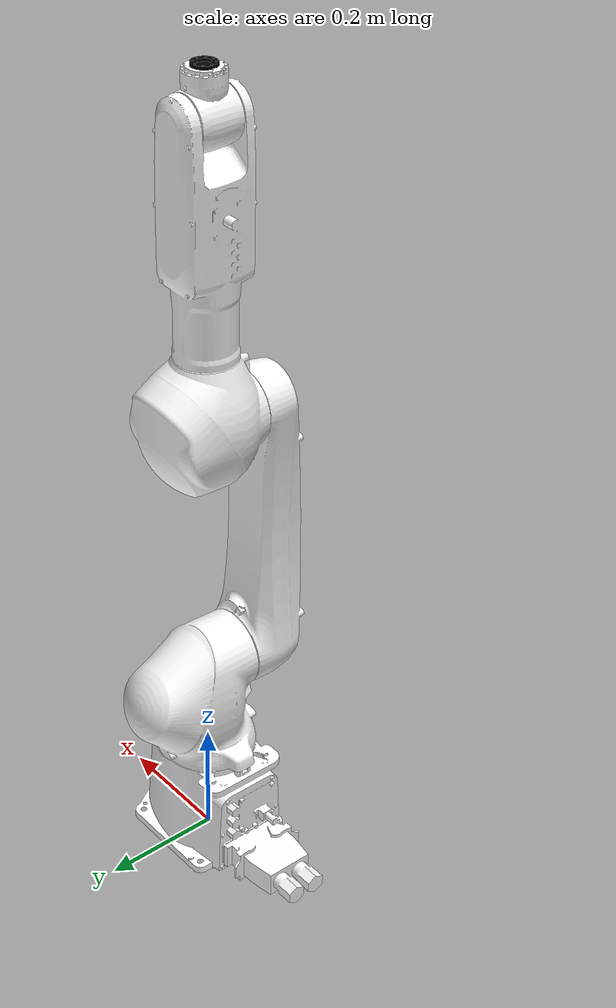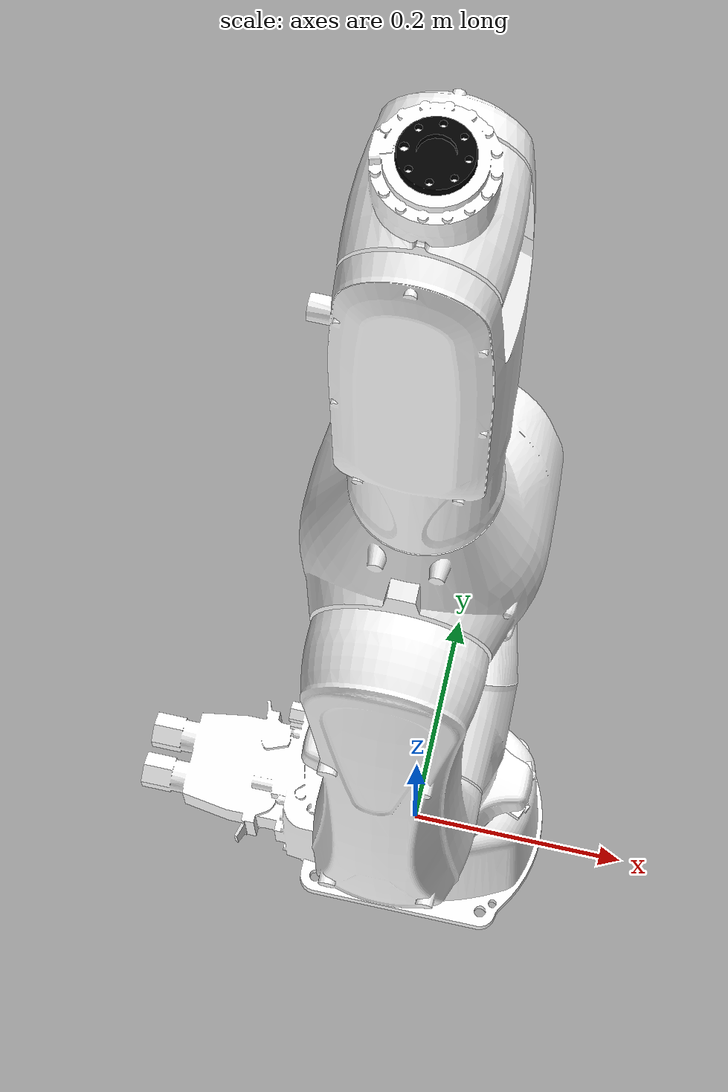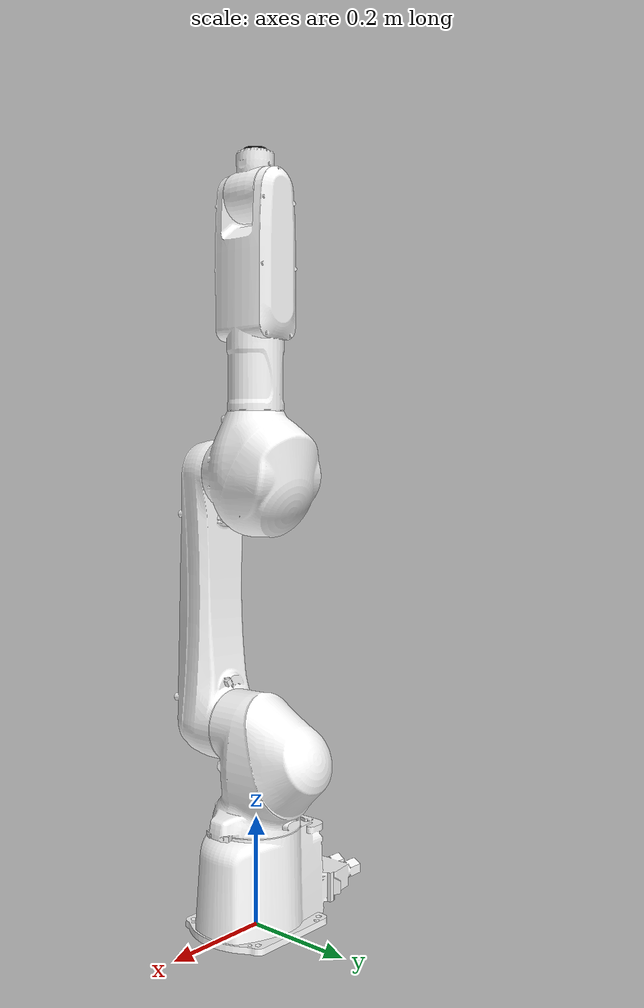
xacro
<?xml version="1.0" ?>
<robot name="khi_rs007l" xmlns:xacro="http://ros.org/wiki/xacro">
  <xacro:include filename="$(find rs_description)/urdf/rs007l_macro.xacro"/>

  <!-- instantiate rs007l -->
  <xacro:khi_rs007l />

  <!-- Fix rs007l to world -->

  <link name="world"/>

  <joint name="world2base" type="fixed">
    <parent link="world"/>
    <child link="base_link"/>
    <origin rpy="0 0 0" xyz="0 0 0"/>
  </joint>
</robot>

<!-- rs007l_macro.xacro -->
<robot xmlns:xacro="http://ros.org/wiki/xacro">
  <xacro:macro name="khi_rs007l">

    <xacro:include filename="$(find rs_description)/urdf/rs.transmission.xacro" />
    <xacro:include filename="$(find rs_description)/urdf/common.gazebo.xacro" />

    <!-- link rviz colors -->
    <material name="White">
      <color rgba="1 1 1 1"/>
    </material>

    <material name="Black">
      <color rgba="0 0 0 1"/>
    </material>

    <!-- DH parameters -->
    <xacro:property name="dh_j1_j2_roty" value="-${pi/2}"/>
    <xacro:property name="dh_j3_j4_roty" value="${pi/2}"/>
    <xacro:property name="dh_j4_j5_roty" value="-${pi/2}"/>
    <xacro:property name="dh_j5_j6_roty" value="${pi/2}"/>

    <!-- link mass [kg] -->
    <xacro:property name="j0_mass" value="11"/>
    <xacro:property name="j1_mass" value="8.188"/>
    <xacro:property name="j2_mass" value="6.826"/>
    <xacro:property name="j3_mass" value="5.236"/>
    <xacro:property name="j4_mass" value="5.066"/>
    <xacro:property name="j5_mass" value="1.625"/>
    <xacro:property name="j6_mass" value="0.625"/>

    <!-- link lengths [m] -->
    <xacro:property name="j0_length" value="0.36"/>
    <xacro:property name="j1_length" value="0.0"/>
    <xacro:property name="j2_length" value="0.455"/>
    <xacro:property name="j3_length" value="0.0925"/>
    <xacro:property name="j4_length" value="0.3825"/>
    <xacro:property name="j5_length" value="0.078"/>

    <!-- joint limits [rad] -->
    <xacro:property name="j1_lower_limit" value="${-pi}"/>
    <xacro:property name="j1_upper_limit" value="${pi}"/>
    <xacro:property name="j2_lower_limit" value="${-pi*135/180}"/>
    <xacro:property name="j2_upper_limit" value="${pi*135/180}"/>
    <xacro:property name="j3_lower_limit" value="${-pi*157/180}"/>
    <xacro:property name="j3_upper_limit" value="${pi*157/180}"/>
    <xacro:property name="j4_lower_limit" value="${-pi*200/180}"/>
    <xacro:property name="j4_upper_limit" value="${pi*200/180}"/>
    <xacro:property name="j5_lower_limit" value="${-pi*125/180}"/>
    <xacro:property name="j5_upper_limit" value="${pi*125/180}"/>
    <xacro:property name="j6_lower_limit" value="${-2*pi}"/>
    <xacro:property name="j6_upper_limit" value="${2*pi}"/>

    <!-- joint verocity limits [rad/s] -->
    <xacro:property name="j1_velocity_limit" value="${pi*370/180}"/>
    <xacro:property name="j2_velocity_limit" value="${pi*310/180}"/>
    <xacro:property name="j3_velocity_limit" value="${pi*410/180}"/>
    <xacro:property name="j4_velocity_limit" value="${pi*550/180}"/>
    <xacro:property name="j5_velocity_limit" value="${pi*550/180}"/>
    <xacro:property name="j6_velocity_limit" value="${pi*1000/180}"/>

    <!-- link inertial(TODO : set correct link inertial )-->
    <xacro:macro name="default_inertial" params="mass">
      <inertial>
        <mass value="${mass}" />
        <inertia ixx="1.0" ixy="0.0" ixz="0.0" iyy="1.0" iyz="0.0" izz="1.0" />
      </inertial>
    </xacro:macro>

    <!-- rs007l start -->

    <!-- Link 0 -->
    <link name="base_link">
      <visual>
        <geometry>
          <mesh filename="package://rs_description/meshes/RS007L_J0.stl"/>
        </geometry>
        <material name="White"/>
        <origin rpy="0 0 0" xyz="0 0 0"/>
      </visual>
      <collision>
        <geometry>
          <mesh filename="package://rs_description/meshes/RS007L_J0.stl"/>
        </geometry>
        <material name="White"/>
        <origin rpy="0 0 0" xyz="0 0 0"/>
      </collision>
      <xacro:default_inertial mass="${j0_mass}"/>
    </link>

    <!-- Link 1 -->
    <joint name="joint1" type="revolute">
      <axis xyz="0 0 -1" rpy="0 0 0" />
      <limit effort="1000.0" lower="${j1_lower_limit}" upper="${j1_upper_limit}" velocity="${j1_velocity_limit}"/>
      <origin xyz="0 0 ${j0_length}" rpy="0 0 0" />
      <parent link="base_link"/>
      <child link="link1"/>
      <dynamics damping="0.0" friction="0.0"/>
    </joint>

    <link name="link1">
      <visual>
        <geometry>
          <mesh filename="package://rs_description/meshes/RS007L_J1.stl"/>
        </geometry>
        <material name="White"/>
        <origin rpy="0 0 0" xyz="0 0 0"/>
      </visual>
      <collision>
        <geometry>
          <mesh filename="package://rs_description/meshes/RS007L_J1.stl"/>
        </geometry>
        <material name="White"/>
        <origin rpy="0 0 0" xyz="0 0 0"/>
      </collision>
      <xacro:default_inertial mass="${j1_mass}"/>
    </link>

    <!-- Link 2 -->
    <joint name="joint2" type="revolute">
      <axis xyz="0 0 1" rpy="0 0 0" />
      <limit effort="1000.0" lower="${j2_lower_limit}" upper="${j2_upper_limit}" velocity="${j2_velocity_limit}"/>
      <origin xyz="0 0 ${j1_length}" rpy="0 ${dh_j1_j2_roty} 0" />
      <parent link="link1"/>
      <child link="link2"/>
      <dynamics damping="0.0" friction="0.0"/>
    </joint>

    <link name="link2">
      <visual>
        <geometry>
          <mesh filename="package://rs_description/meshes/RS007L_J2.stl"/>
        </geometry>
        <material name="White"/>
        <origin xyz="0 0 0" rpy="0 ${dh_j1_j2_roty*-1} 0"/>
      </visual>
      <collision>
        <geometry>
          <mesh filename="package://rs_description/meshes/RS007L_J2.stl"/>
        </geometry>
        <material name="White"/>
        <origin xyz="0 0 0" rpy="0 ${dh_j1_j2_roty*-1} 0"/>
      </collision>
      <xacro:default_inertial mass="0${j2_mass}"/>
    </link>

    <!-- Link 3 -->
    <joint name="joint3" type="revolute">
      <axis xyz="0 0 -1" rpy="0 0 0" />
      <limit effort="1000.0" lower="${j3_lower_limit}" upper="${j3_upper_limit}" velocity="${j3_velocity_limit}"/>
      <origin xyz="${j2_length} 0 0" rpy="0 0 0" />
      <parent link="link2"/>
      <child link="link3"/>
      <dynamics damping="0.0" friction="0.0"/>
    </joint>

    <link name="link3">
      <visual>
        <geometry>
          <mesh filename="package://rs_description/meshes/RS007L_J3.stl"/>
        </geometry>
        <material name="White"/>
        <origin xyz="0 0 0" rpy="0 ${dh_j1_j2_roty*-1} 0"/>
      </visual>
      <collision>
        <geometry>
          <mesh filename="package://rs_description/meshes/RS007L_J3.stl"/>
        </geometry>
        <material name="White"/>
        <origin xyz="0 0 0" rpy="0 ${dh_j1_j2_roty*-1} 0"/>
      </collision>
      <xacro:default_inertial mass="${j3_mass}"/>
    </link>

    <!-- Link 4 -->
    <joint name="joint4" type="revolute">
      <axis xyz="0 0 1" rpy="0 0 0" />
      <limit effort="1000.0" lower="${j4_lower_limit}" upper="${j4_upper_limit}" velocity="${j4_velocity_limit}"/>
      <origin xyz="${j3_length} 0 0" rpy="0 ${dh_j3_j4_roty} 0" />
      <parent link="link3"/>
      <child link="link4"/>
      <dynamics damping="0.0" friction="0.0"/>
    </joint>

    <link name="link4">
      <visual>
        <geometry>
          <mesh filename="package://rs_description/meshes/RS007L_J4.stl"/>
        </geometry>
        <material name="White"/>
        <origin xyz="0 0 ${j4_length}" rpy="0 0 0"/>
      </visual>
      <collision>
        <geometry>
          <mesh filename="package://rs_description/meshes/RS007L_J4.stl"/>
        </geometry>
        <material name="White"/>
        <origin xyz="0 0 ${j4_length}" rpy="0 0 0"/>
      </collision>
      <xacro:default_inertial mass="${j4_mass}"/>
    </link>

    <!-- Link 5 -->
    <joint name="joint5" type="revolute">
      <axis xyz="0 0 -1" rpy="0 0 0" />
      <limit effort="1000.0" lower="${j5_lower_limit}" upper="${j5_upper_limit}" velocity="${j5_velocity_limit}"/>
      <origin xyz="0 0 ${j4_length}" rpy="0 ${dh_j4_j5_roty} 0" />
      <parent link="link4"/>
      <child link="link5"/>
      <dynamics damping="0.0" friction="0.0"/>
    </joint>

    <link name="link5">
      <visual>
        <geometry>
          <mesh filename="package://rs_description/meshes/RS007L_J5.stl"/>
        </geometry>
        <material name="White"/>
        <origin xyz="0 0 0" rpy="0 ${dh_j4_j5_roty*-1} 0"/>
      </visual>
      <collision>
        <geometry>
          <mesh filename="package://rs_description/meshes/RS007L_J5.stl"/>
        </geometry>
        <material name="White"/>
        <origin xyz="0 0 0" rpy="0 ${dh_j4_j5_roty*-1} 0"/>
      </collision>
      <xacro:default_inertial mass="${j5_mass}"/>
    </link>

    <!-- Link 6 -->
    <joint name="joint6" type="revolute">
      <axis xyz="0 0 1" rpy="0 0 0" />
      <limit effort="1000.0" lower="${j6_lower_limit}" upper="${j6_upper_limit}" velocity="${j6_velocity_limit}"/>
      <origin xyz="${j5_length} 0 0" rpy="0 ${dh_j5_j6_roty} 0" />
      <parent link="link5"/>
      <child link="link6"/>
      <dynamics damping="0.0" friction="0.0"/>
    </joint>

    <link name="link6">
      <visual>
        <geometry>
          <mesh filename="package://rs_description/meshes/RS007L_J6.stl"/>
        </geometry>
        <material name="Black"/>
        <origin xyz="0 0 0" rpy="0 0 0"/>
      </visual>
      <collision>
        <geometry>
          <mesh filename="package://rs_description/meshes/RS007L_J6.stl"/>
        </geometry>
        <material name="Black"/>
        <origin xyz="0 0 0" rpy="0 0 0"/>
      </collision>
      <xacro:default_inertial mass="${j6_mass}"/>
    </link>
  </xacro:macro>
</robot>
